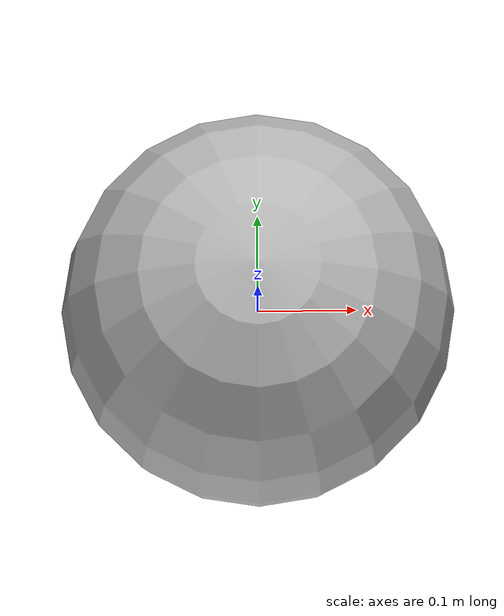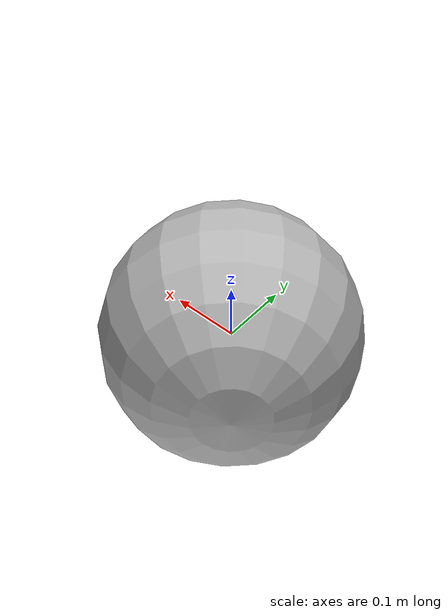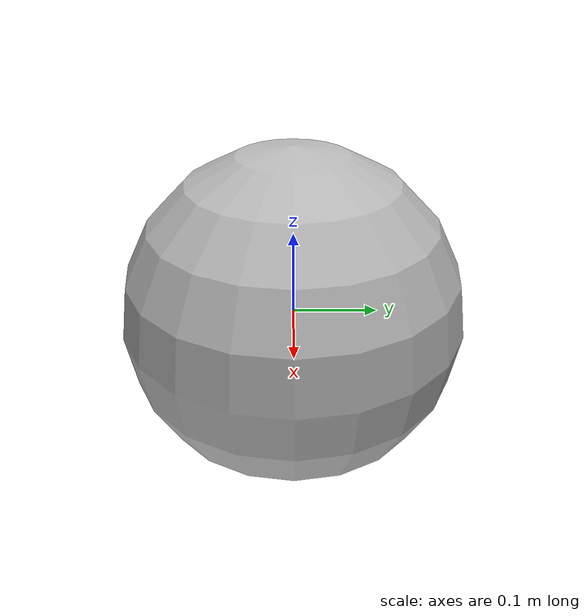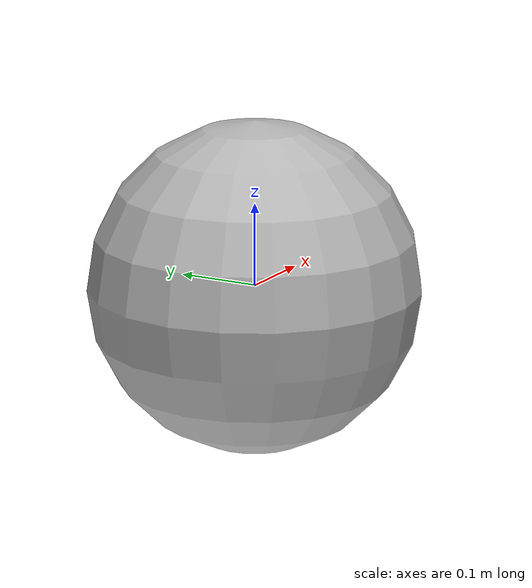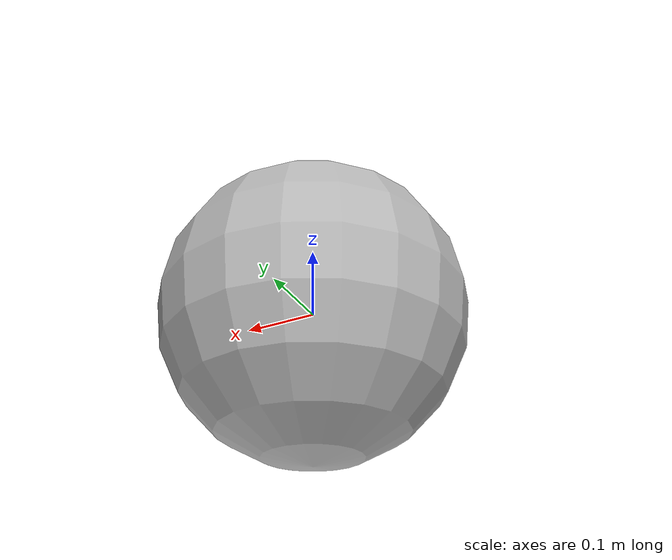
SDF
<?xml version="1.0"?>
<sdf version="1.7">
  <!--
  This is based on the model generated by `ConstructTwoFreeBodiesPlant()`
  in `inverse_kinematics_test_utilities.cc`.
  -->
  <model name="two_bodies">
    <link name="body1">
      <inertial>
        <mass>1</mass>
        <inertia>
          <ixx>0.001</ixx>
          <iyy>0.001</iyy>
          <izz>0.001</izz>
          <ixy>0</ixy>
          <ixz>0</ixz>
          <iyz>0</iyz>
        </inertia>
      </inertial>
      <collision name="body1_collision">
        <geometry>
          <sphere>
            <radius>0.1</radius>
          </sphere>
        </geometry>
      </collision>
      <visual name="body1_visual">
        <geometry>
          <sphere>
            <radius>0.1</radius>
          </sphere>
        </geometry>
      </visual>
    </link>
    <link name="body2">
      <inertial>
        <mass>1</mass>
        <inertia>
          <ixx>0.001</ixx>
          <iyy>0.001</iyy>
          <izz>0.001</izz>
          <ixy>0</ixy>
          <ixz>0</ixz>
          <iyz>0</iyz>
        </inertia>
      </inertial>
      <collision name="body2_collision">
        <geometry>
          <sphere>
            <radius>0.2</radius>
          </sphere>
        </geometry>
      </collision>
       <visual name="body2_visual">
        <geometry>
          <sphere>
            <radius>0.2</radius>
          </sphere>
        </geometry>
      </visual>
    </link>
  </model>
</sdf>
